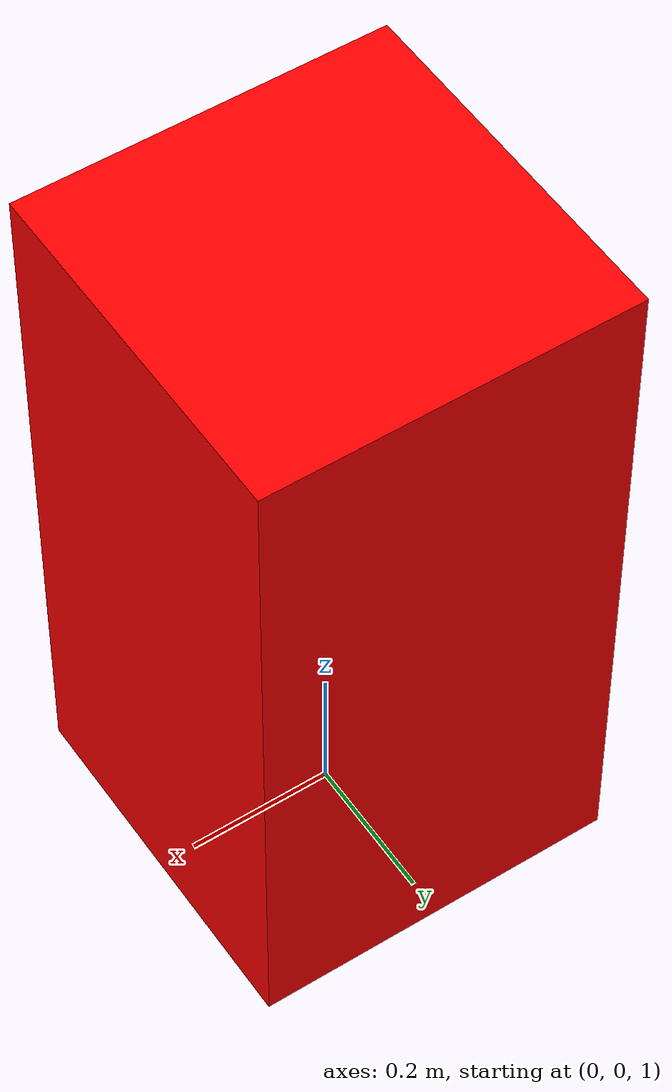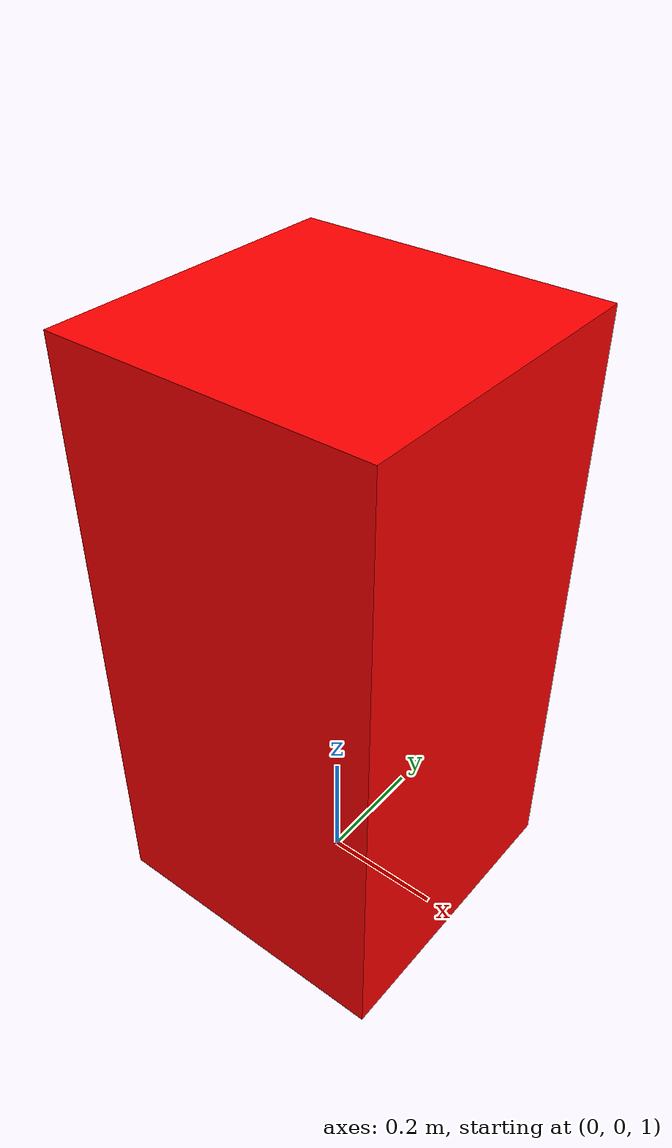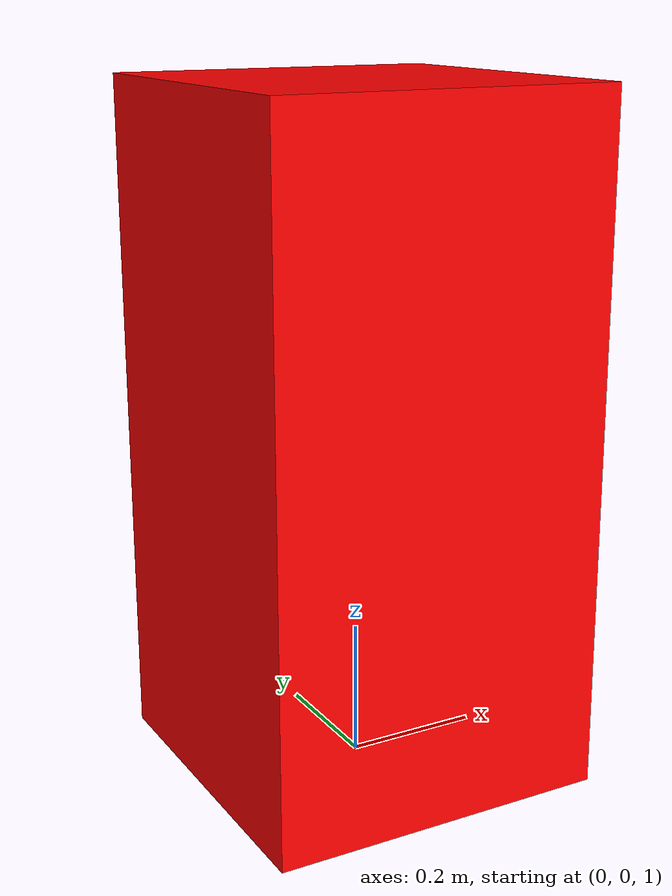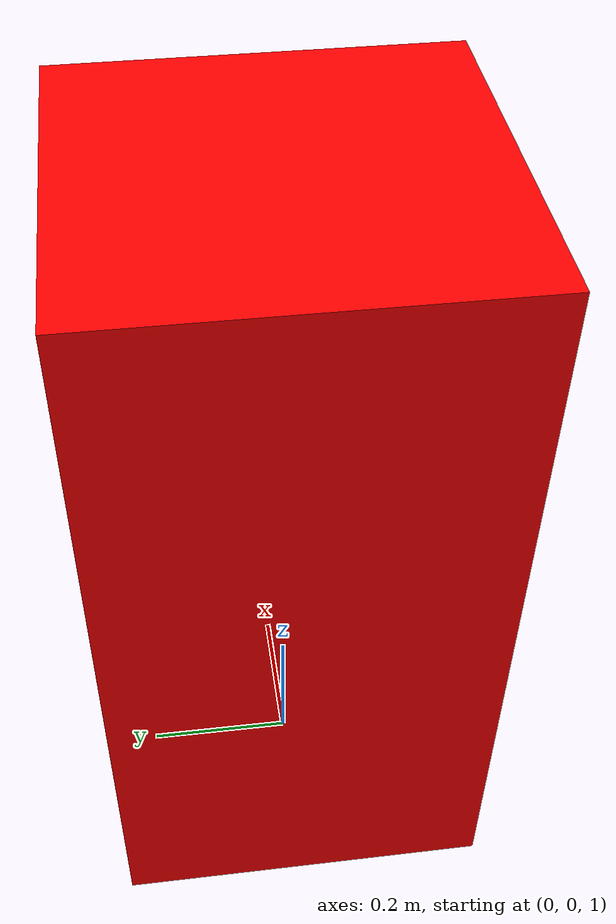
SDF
<?xml version="1.0"?>
<sdf version="1.6">
    <!-- 添加一个立方体障碍物 -->
    <model name="obstacle_box">
      <static>true</static>
      <link name="box_link">
        <visual name="visual">
          <geometry>
            <box>
              <size>0.5 0.5 1</size> <!-- 立方体大小 (x, y, z) -->
            </box>
          </geometry>
          <material>
            <ambient>1 0 0 1</ambient> <!-- 红色 -->
            <diffuse>1 0 0 1</diffuse>
          </material>
        </visual>
        <collision name="collision">
          <geometry>
            <box>
              <size>0.5 0.5 1</size>
            </box>
          </geometry>
        </collision>
        <pose>0 0 1.5 0 0 0</pose> <!-- 障碍物位置 (x, y, z, roll, pitch, yaw) -->
      </link>
    </model>
</sdf>
